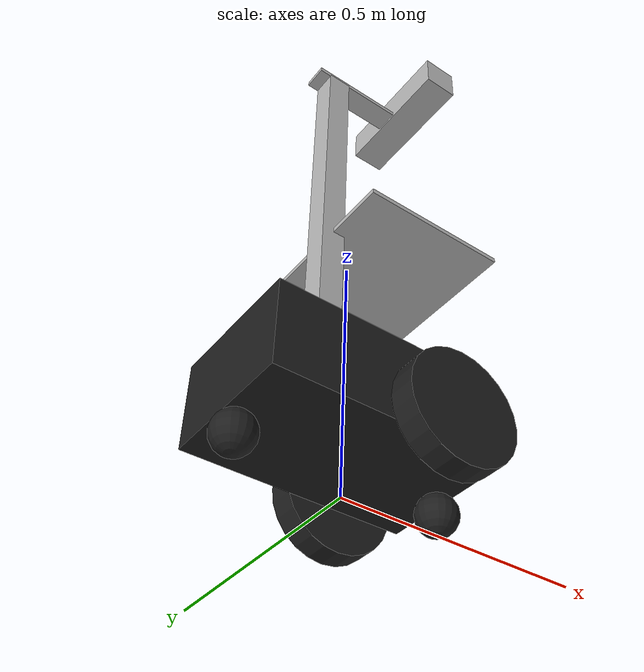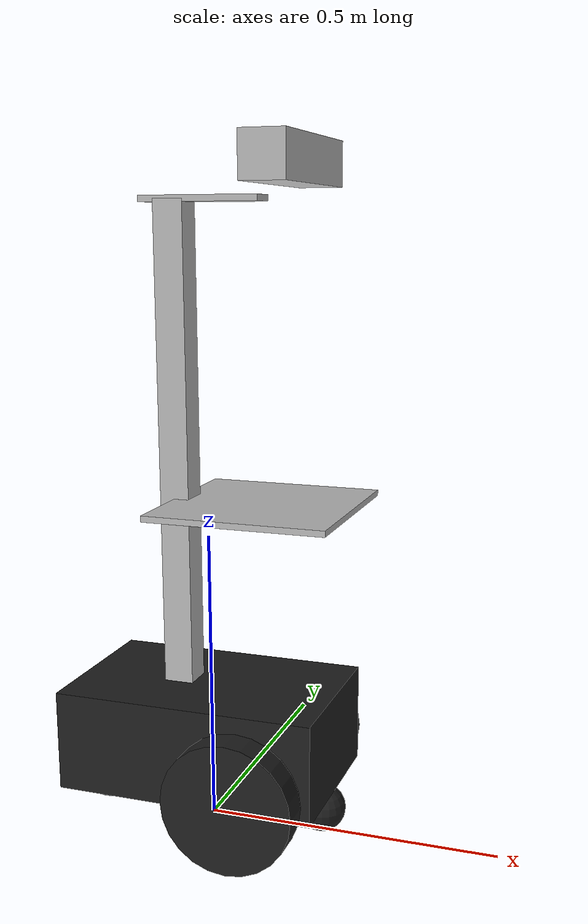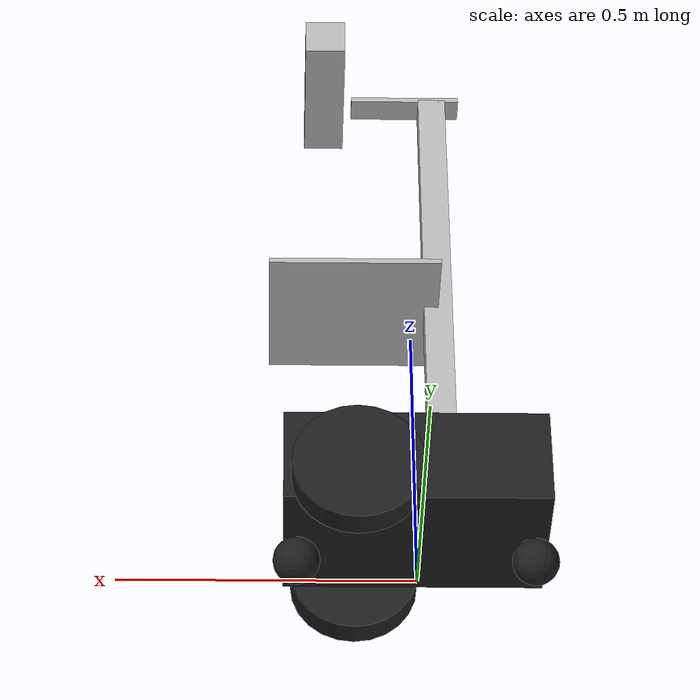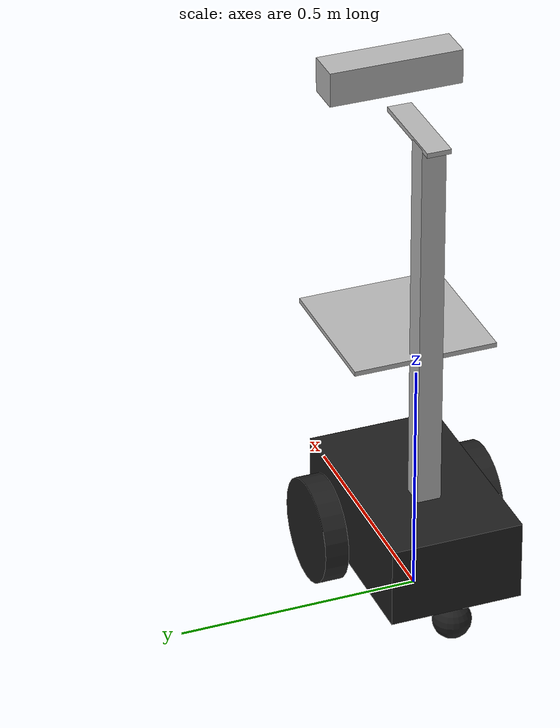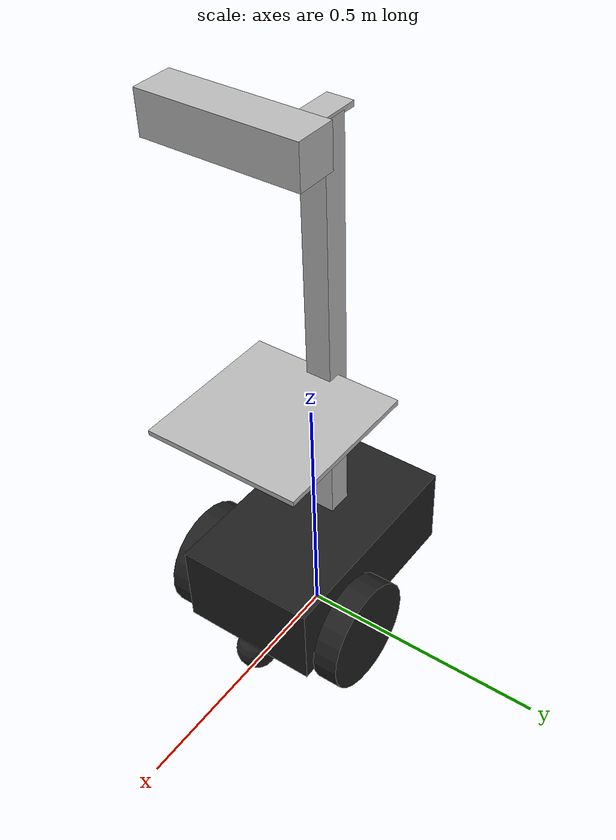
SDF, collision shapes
<?xml version="1.0" ?>
<sdf version="1.5">
  <model name="hri_robot">

    <link name="chassis">
      <pose>0 0 0.16 0 0 0</pose>
      <inertial>

        <mass>5.67</mass>
        <inertia>
          <ixx>0.07</ixx>
          <iyy>0.08</iyy>
          <izz>0.10</izz>
          <ixy>0</ixy>
          <ixz>0</ixz>
          <iyz>0</iyz>
        </inertia>
      </inertial>

      <collision name="collision">
        <geometry>
          <box>
            <size>0.445 0.277 0.17</size>
          </box>
        </geometry>
      </collision>
      <collision name="castor_collision">
        <pose>-0.200 0 -0.12 0 0 0</pose>
        <geometry>
          <sphere>
            <radius>0.04</radius>
          </sphere>
        </geometry>
        <surface>
          <friction>
            <ode>
              <mu>0</mu>
              <mu2>0</mu2>
              <slip1>1.0</slip1>
              <slip2>1.0</slip2>
            </ode>
          </friction>
        </surface>
      </collision>
      <collision name="castor_collision2">
        <pose>0.200 0 -0.12 0 0 0</pose>
        <geometry>
          <sphere>
            <radius>0.04</radius>
          </sphere>
        </geometry>
        <surface>
          <friction>
            <ode>
              <mu>0</mu>
              <mu2>0</mu2>
              <slip1>1.0</slip1>
              <slip2>1.0</slip2>
            </ode>
          </friction>
        </surface>
      </collision>
      <visual name="visual">
        <pose>0 0 0.04 0 0 0</pose>
        <geometry>
          <mesh>
            <uri>model://hri_robot/meshes/chassis.dae</uri>
          </mesh>
        </geometry>
      </visual>
      <visual name="castor_visual">
        <pose>-0.200 0 -0.12 0 0 0</pose>
        <geometry>
          <sphere>
            <radius>0.04</radius>
          </sphere>
        </geometry>
        <material>
          <script>
            <uri>file://media/materials/scripts/gazebo.material</uri>
            <name>Gazebo/FlatBlack</name>
          </script>
        </material>
      </visual>
      <visual name="castor_visual2">
        <pose>0.200 0 -0.12 0 0 0</pose>
        <geometry>
          <sphere>
            <radius>0.04</radius>
          </sphere>
        </geometry>
        <material>
          <script>
            <uri>file://media/materials/scripts/gazebo.material</uri>
            <name>Gazebo/FlatBlack</name>
          </script>
        </material>
      </visual>
    </link>

    <link name = "frame">
      <pose>0 0 0.16 0 0 0</pose>
      <inertial>

        <mass>5.67</mass>
        <inertia>
          <ixx>0.07</ixx>
          <iyy>0.08</iyy>
          <izz>0.10</izz>
          <ixy>0</ixy>
          <ixz>0</ixz>
          <iyz>0</iyz>
        </inertia>
      </inertial>

      <collision name="collision1">
	<pose>-0.05 0 0.485 0 0 0</pose>
        <geometry>
          <box>
            <size>0.05 0.05 0.80</size>
          </box>
        </geometry>
      </collision>
      <visual name="visual1">
	<pose>-0.05 0 0.485 0 0 0</pose>
        <geometry>
          <box>
            <size>0.05 0.05 0.80</size>
          </box>
        </geometry>
      </visual>

      <collision name="collision2">
	<pose>0 0 0.885 0 0 0</pose>
        <geometry>
          <box>
            <size>0.20 0.05 0.01</size>
          </box>
        </geometry>
      </collision>
      <visual name="visual2">
	<pose>0 0 0.885 0 0 0</pose>
        <geometry>
          <box>
            <size>0.20 0.05 0.01</size>
          </box>
        </geometry>
      </visual>

      <collision name="collision3">
	<pose>0.10 0 0.4 0 0 0</pose>
        <geometry>
          <box>
            <size>0.30 0.30 0.01</size>
          </box>
        </geometry>
      </collision>
      <visual name="visual3">
	<pose>0.10 0 0.4 0 0 0</pose>
        <geometry>
          <box>
            <size>0.30 0.30 0.01</size>
          </box>
        </geometry>
      </visual>

    </link>

    <link name="right_wheel">
      <pose>0.1 -.17 0.11 0 1.5707 1.5707</pose>
      <inertial>
        <mass>1.5</mass>
        <inertia>
          <ixx>0.0051</ixx>
          <iyy>0.0051</iyy>
          <izz>0.0090</izz>
          <ixy>0</ixy>
          <ixz>0</ixz>
          <iyz>0</iyz>
        </inertia>
      </inertial>
      <collision name="collision">
        <geometry>
          <cylinder>
            <radius>0.11</radius>
            <length>0.05</length>
          </cylinder>
        </geometry>
        <surface>
          <friction>
            <ode>
              <mu>100000.0</mu>
              <mu2>100000.0</mu2>
              <slip1>0.0</slip1>
              <slip2>0.0</slip2>
            </ode>
          </friction>
        </surface>
      </collision>
      <visual name="visual">
        <geometry>
          <cylinder>
            <radius>0.11</radius>
            <length>0.05</length>
          </cylinder>
        </geometry>
        <material>
          <script>
            <uri>file://media/materials/scripts/gazebo.material</uri>
            <name>Gazebo/FlatBlack</name>
          </script>
        </material>
      </visual>
    </link>

    <joint type="fixed" name="frame_connector">
      <pose>0 0 0.50 0 0 0</pose>
      <child>frame</child>
      <parent>chassis</parent>
      <axis>
        <xyz>0 1 0</xyz>
        <limit>
          <upper>1</upper>
          <lower>-1</lower>
        </limit>
	<dynamics>
          <damping>1.000000</damping>
          <friction>0.000000</friction>
        </dynamics>
      </axis>
      <use_parent_model_frame>true</use_parent_model_frame>
    </joint>

    <link name="left_wheel">
      <pose>0.1 .17 0.11 0 1.5707 1.5707</pose>
      <inertial>
        <mass>1.5</mass>
        <inertia>
          <ixx>0.0051</ixx>
          <iyy>0.0051</iyy>
          <izz>0.0090</izz>
          <ixy>0</ixy>
          <ixz>0</ixz>
          <iyz>0</iyz>
        </inertia>
      </inertial>
      <collision name="collision">
        <geometry>
          <cylinder>
            <radius>0.11</radius>
            <length>0.05</length>
          </cylinder>
        </geometry>
        <surface>
          <friction>
            <ode>
              <mu>100000.0</mu>
              <mu2>100000.0</mu2>
              <slip1>0.0</slip1>
              <slip2>0.0</slip2>
            </ode>
          </friction>
        </surface>
      </collision>
      <visual name="visual">
        <geometry>
          <cylinder>
            <radius>0.11</radius>
            <length>0.05</length>
          </cylinder>
        </geometry>
        <material>
          <script>
            <uri>file://media/materials/scripts/gazebo.material</uri>
            <name>Gazebo/FlatBlack</name>
          </script>
        </material>
      </visual>
    </link>

    <joint type="revolute" name="left_wheel_hinge">
      <pose>0 0 -0.03 0 0 0</pose>
      <child>left_wheel</child>
      <parent>chassis</parent>
      <axis>
        <xyz>0 1 0</xyz>
        <use_parent_model_frame>true</use_parent_model_frame>
      </axis>
    </joint>

    <joint type="revolute" name="right_wheel_hinge">
      <pose>0 0 0.03 0 0 0</pose>
      <child>right_wheel</child>
      <parent>chassis</parent>
      <axis>
        <xyz>0 1 0</xyz>
        <use_parent_model_frame>true</use_parent_model_frame>
      </axis>
    </joint>

    <plugin name="differential_drive_controller" filename="libgazebo_ros_diff_drive.so">
	<alwaysOn>true</alwaysOn>
	<updateRate>100</updateRate>
	<leftJoint>left_wheel_hinge</leftJoint>
	<rightJoint>right_wheel_hinge</rightJoint>
	<wheelSeparation>0.44</wheelSeparation>
	<wheelDiameter>0.22</wheelDiameter>
	<wheelTorque>5.0</wheelTorque>
	<commandTopic>cmd_vel</commandTopic>
	<odometryTopic>odom</odometryTopic>
	<odometryFrame>odom</odometryFrame>
	<robotBaseFrame>base_footprint</robotBaseFrame>
    </plugin>

    <include>
      <uri>model://kinect</uri>
      <pose>0.15 0 1.10 0 0 0</pose>
    </include>
    <joint type="revolute" name="kinect_joint">
      <pose>0 0 0 0 0 0</pose>
      <child>kinect::link</child>
      <parent>chassis</parent>
      <axis>
        <xyz>0 1 0</xyz>
        <limit>
          <upper>1</upper>
          <lower>-1</lower>
        </limit>
	<dynamics>
          <damping>1.000000</damping>
          <friction>0.000000</friction>
        </dynamics>
      </axis>
      <use_parent_model_frame>true</use_parent_model_frame>
    </joint>

    <plugin name="kinect_tilt_controller" filename="libhri_gazebo_platform_kinect_tilt_plugin.so">
      <tiltJoint>kinect_joint</tiltJoint>
    </plugin>

  </model>
</sdf>

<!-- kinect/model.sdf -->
<sdf version="1.5">
  <model name="kinect">
    <pose>0 0 0.036 0 0 0</pose>
    <link name="link">
      <inertial>
        <mass>0.0001</mass>
      </inertial>
      <collision name="collision">
        <geometry>
          <box>
            <size>0.073000 0.276000 0.072000</size>
          </box>
        </geometry>
      </collision>
      <visual name="visual">
        <geometry>
          <mesh>
            <uri>model://kinect/meshes/kinect.dae</uri>
          </mesh>
        </geometry>
      </visual>
      <sensor name="camera" type="depth">
        <update_rate>20</update_rate>
        <camera>
          <horizontal_fov>1.047198</horizontal_fov>
          <image>
            <width>640</width>
            <height>480</height>
            <format>R8G8B8</format>
          </image>
          <clip>
            <near>0.5</near>
            <far>8</far>
          </clip>
        </camera>

	<plugin name="camera_controller" filename="libgazebo_ros_openni_kinect.so">
            <alwaysOn>true</alwaysOn>
                <updateRate>10.0</updateRate>
                <cameraName>camera</cameraName>
                <frameName>openni_camera_link</frameName>
            <imageTopicName>rgb/image_raw</imageTopicName>
            <depthImageTopicName>depth/image_raw</depthImageTopicName>
            <pointCloudTopicName>depth/points</pointCloudTopicName>
            <cameraInfoTopicName>rgb/camera_info</cameraInfoTopicName>
            <depthImageCameraInfoTopicName>depth/camera_info</depthImageCameraInfoTopicName>
            <pointCloudCutoff>0.4</pointCloudCutoff>
                <hackBaseline>0.07</hackBaseline>
                <distortionK1>0.0</distortionK1>
                <distortionK2>0.0</distortionK2>
                <distortionK3>0.0</distortionK3>
                <distortionT1>0.0</distortionT1>
                <distortionT2>0.0</distortionT2>
            <CxPrime>0.0</CxPrime>
            <Cx>0.0</Cx>
            <Cy>0.0</Cy>
            <focalLength>0.0</focalLength>
            </plugin>

      </sensor>
    </link>
  </model>
</sdf>
